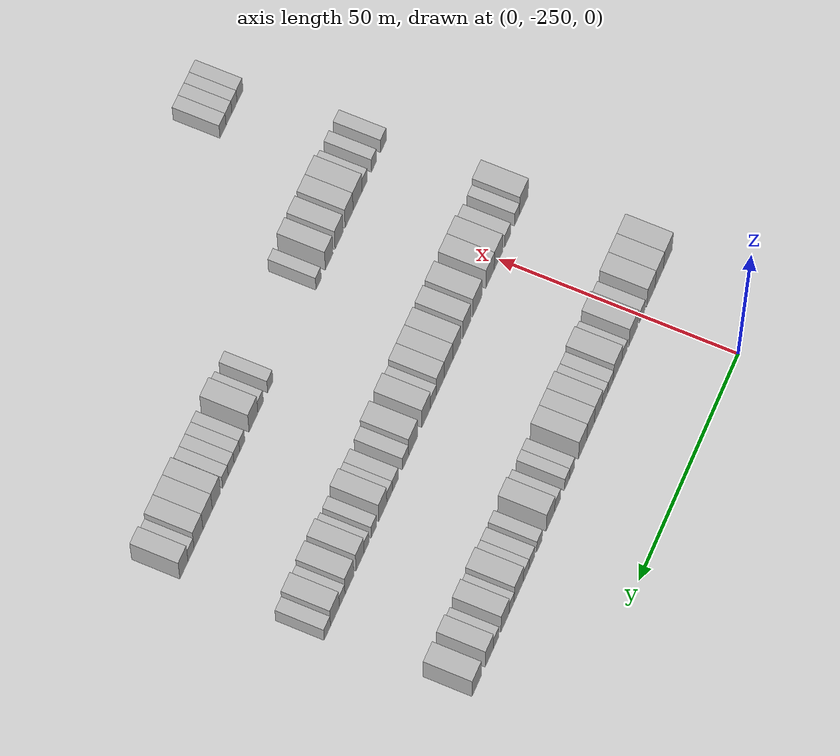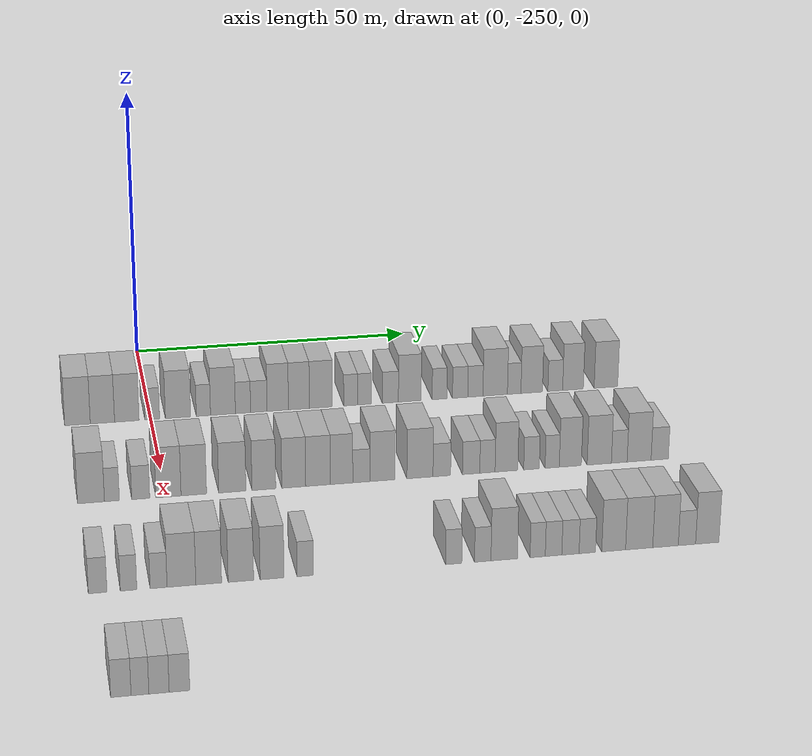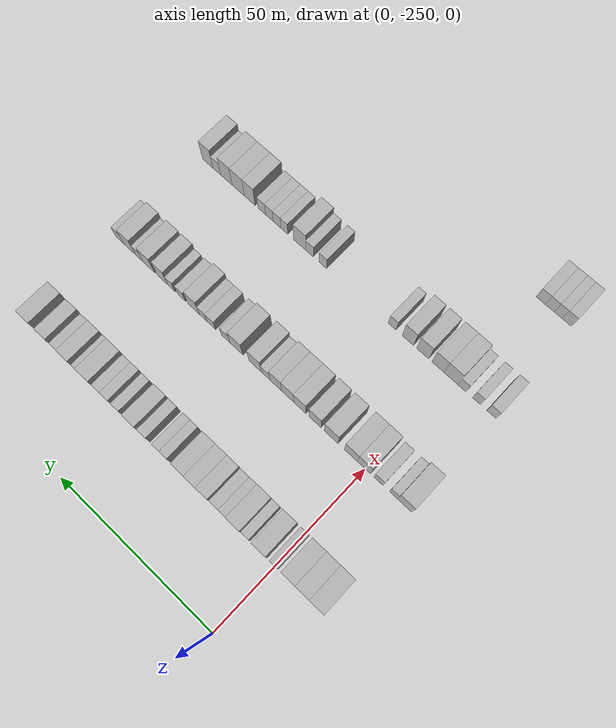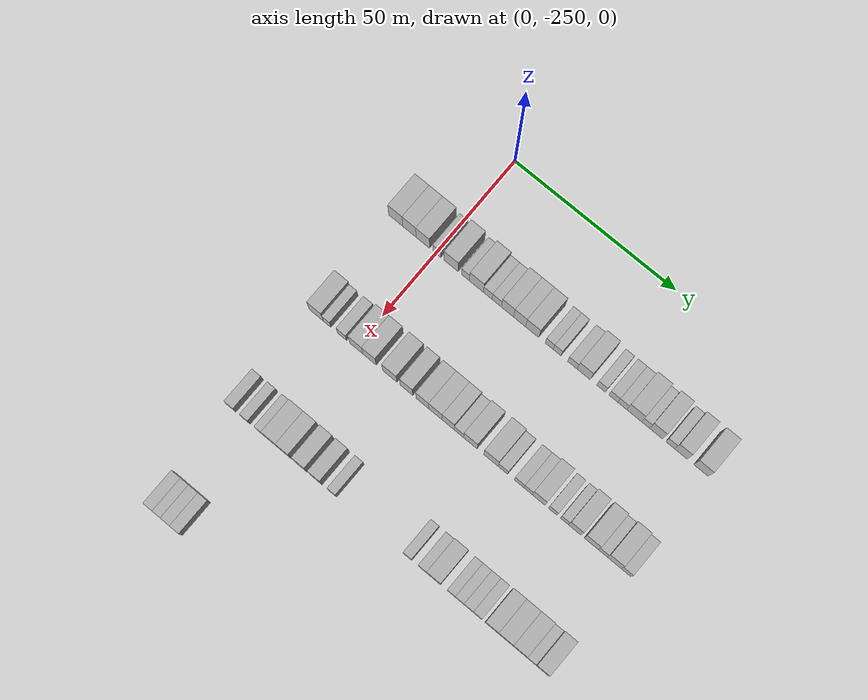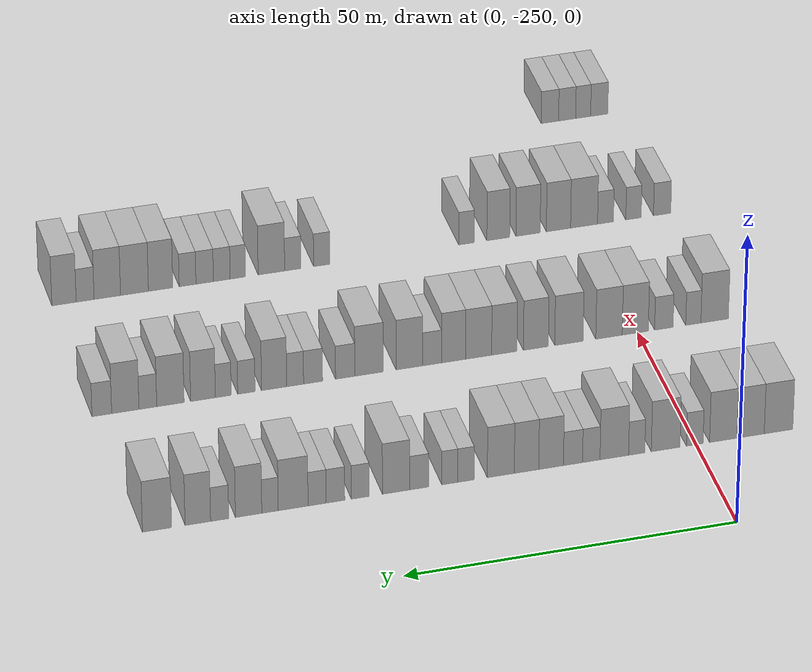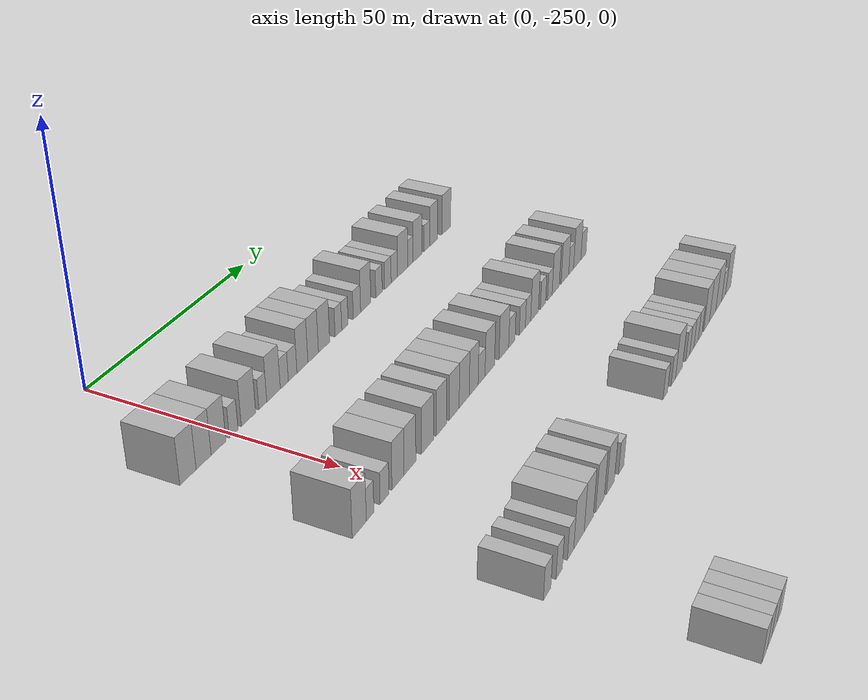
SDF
<sdf version="1.6">
 <world name="default">
  <model name="building_50">
   <static>1</static>
   <pose>25.0000 -262.7052 0 0.000000 0.000000 0.000000</pose>
   <link name="link">
    <pose>0 0 4.50 0 0 0</pose>
    <collision name="collision"><geometry><box><size>10.0000 4.4191 9.0000</size></box></geometry></collision>
    <visual name="visual">
     <cast_shadows>0</cast_shadows>
     <geometry><box><size>10.0000 4.4191 9.0000</size></box></geometry>
     <material>
      <script>
       <uri>model://HANNAS_wall/materials/scripts</uri>
       <uri>model://HANNAS_wall/materials/textures</uri>
       <name>vrc/HANNAS_wall</name>
      </script>
     </material>
    </visual>
   </link>
  </model>
  <model name="building_51">
   <static>1</static>
   <pose>25.0000 -258.3939 0 0.000000 0.000000 0.000000</pose>
   <link name="link">
    <pose>0 0 4.50 0 0 0</pose>
    <collision name="collision"><geometry><box><size>10.0000 4.2034 9.0000</size></box></geometry></collision>
    <visual name="visual">
     <cast_shadows>0</cast_shadows>
     <geometry><box><size>10.0000 4.2034 9.0000</size></box></geometry>
     <material>
      <script>
       <uri>model://HANNAS_wall/materials/scripts</uri>
       <uri>model://HANNAS_wall/materials/textures</uri>
       <name>vrc/HANNAS_wall</name>
      </script>
     </material>
    </visual>
   </link>
  </model>
  <model name="building_52">
   <static>1</static>
   <pose>25.0000 -254.1641 0 0.000000 0.000000 0.000000</pose>
   <link name="link">
    <pose>0 0 4.50 0 0 0</pose>
    <collision name="collision"><geometry><box><size>10.0000 4.2562 9.0000</size></box></geometry></collision>
    <visual name="visual">
     <cast_shadows>0</cast_shadows>
     <geometry><box><size>10.0000 4.2562 9.0000</size></box></geometry>
     <material>
      <script>
       <uri>model://HANNAS_wall/materials/scripts</uri>
       <uri>model://HANNAS_wall/materials/textures</uri>
       <name>vrc/HANNAS_wall</name>
      </script>
     </material>
    </visual>
   </link>
  </model>
  <model name="building_53">
   <static>1</static>
   <pose>25.0000 -249.7516 0 0.000000 0.000000 0.000000</pose>
   <link name="link">
    <pose>0 0 3.00 0 0 0</pose>
    <collision name="collision"><geometry><box><size>10.0000 2.5688 6.0000</size></box></geometry></collision>
    <visual name="visual">
     <cast_shadows>0</cast_shadows>
     <geometry><box><size>10.0000 2.5688 6.0000</size></box></geometry>
     <material>
      <script>
       <uri>model://HANNAS_wall/materials/scripts</uri>
       <uri>model://HANNAS_wall/materials/textures</uri>
       <name>vrc/HANNAS_wall</name>
      </script>
     </material>
    </visual>
   </link>
  </model>
  <model name="building_54">
   <static>1</static>
   <pose>25.0000 -245.2644 0 0.000000 0.000000 0.000000</pose>
   <link name="link">
    <pose>0 0 4.50 0 0 0</pose>
    <collision name="collision"><geometry><box><size>10.0000 4.4055 9.0000</size></box></geometry></collision>
    <visual name="visual">
     <cast_shadows>0</cast_shadows>
     <geometry><box><size>10.0000 4.4055 9.0000</size></box></geometry>
     <material>
      <script>
       <uri>model://HANNAS_wall/materials/scripts</uri>
       <uri>model://HANNAS_wall/materials/textures</uri>
       <name>vrc/HANNAS_wall</name>
      </script>
     </material>
    </visual>
   </link>
  </model>
  <model name="building_55">
   <static>1</static>
   <pose>25.0000 -240.8165 0 0.000000 0.000000 0.000000</pose>
   <link name="link">
    <pose>0 0 3.00 0 0 0</pose>
    <collision name="collision"><geometry><box><size>10.0000 2.4903 6.0000</size></box></geometry></collision>
    <visual name="visual">
     <cast_shadows>0</cast_shadows>
     <geometry><box><size>10.0000 2.4903 6.0000</size></box></geometry>
     <material>
      <script>
       <uri>model://HANNAS_wall/materials/scripts</uri>
       <uri>model://HANNAS_wall/materials/textures</uri>
       <name>vrc/HANNAS_wall</name>
      </script>
     </material>
    </visual>
   </link>
  </model>
  <model name="building_56">
   <static>1</static>
   <pose>25.0000 -237.3843 0 0.000000 0.000000 0.000000</pose>
   <link name="link">
    <pose>0 0 4.50 0 0 0</pose>
    <collision name="collision"><geometry><box><size>10.0000 4.3741 9.0000</size></box></geometry></collision>
    <visual name="visual">
     <cast_shadows>0</cast_shadows>
     <geometry><box><size>10.0000 4.3741 9.0000</size></box></geometry>
     <material>
      <script>
       <uri>model://HANNAS_wall/materials/scripts</uri>
       <uri>model://HANNAS_wall/materials/textures</uri>
       <name>vrc/HANNAS_wall</name>
      </script>
     </material>
    </visual>
   </link>
  </model>
  <model name="building_57">
   <static>1</static>
   <pose>25.0000 -233.8585 0 0.000000 0.000000 0.000000</pose>
   <link name="link">
    <pose>0 0 3.00 0 0 0</pose>
    <collision name="collision"><geometry><box><size>10.0000 2.6776 6.0000</size></box></geometry></collision>
    <visual name="visual">
     <cast_shadows>0</cast_shadows>
     <geometry><box><size>10.0000 2.6776 6.0000</size></box></geometry>
     <material>
      <script>
       <uri>model://HANNAS_wall/materials/scripts</uri>
       <uri>model://HANNAS_wall/materials/textures</uri>
       <name>vrc/HANNAS_wall</name>
      </script>
     </material>
    </visual>
   </link>
  </model>
  <model name="building_58">
   <static>1</static>
   <pose>25.0000 -231.0629 0 0.000000 0.000000 0.000000</pose>
   <link name="link">
    <pose>0 0 3.00 0 0 0</pose>
    <collision name="collision"><geometry><box><size>10.0000 2.9135 6.0000</size></box></geometry></collision>
    <visual name="visual">
     <cast_shadows>0</cast_shadows>
     <geometry><box><size>10.0000 2.9135 6.0000</size></box></geometry>
     <material>
      <script>
       <uri>model://HANNAS_wall/materials/scripts</uri>
       <uri>model://HANNAS_wall/materials/textures</uri>
       <name>vrc/HANNAS_wall</name>
      </script>
     </material>
    </visual>
   </link>
  </model>
  <model name="building_59">
   <static>1</static>
   <pose>25.0000 -227.7193 0 0.000000 0.000000 0.000000</pose>
   <link name="link">
    <pose>0 0 4.50 0 0 0</pose>
    <collision name="collision"><geometry><box><size>10.0000 3.7738 9.0000</size></box></geometry></collision>
    <visual name="visual">
     <cast_shadows>0</cast_shadows>
     <geometry><box><size>10.0000 3.7738 9.0000</size></box></geometry>
     <material>
      <script>
       <uri>model://HANNAS_wall/materials/scripts</uri>
       <uri>model://HANNAS_wall/materials/textures</uri>
       <name>vrc/HANNAS_wall</name>
      </script>
     </material>
    </visual>
   </link>
  </model>
  <model name="building_60">
   <static>1</static>
   <pose>25.0000 -223.9736 0 0.000000 0.000000 0.000000</pose>
   <link name="link">
    <pose>0 0 4.50 0 0 0</pose>
    <collision name="collision"><geometry><box><size>10.0000 3.7176 9.0000</size></box></geometry></collision>
    <visual name="visual">
     <cast_shadows>0</cast_shadows>
     <geometry><box><size>10.0000 3.7176 9.0000</size></box></geometry>
     <material>
      <script>
       <uri>model://HANNAS_wall/materials/scripts</uri>
       <uri>model://HANNAS_wall/materials/textures</uri>
       <name>vrc/HANNAS_wall</name>
      </script>
     </material>
    </visual>
   </link>
  </model>
  <model name="building_61">
   <static>1</static>
   <pose>25.0000 -220.0643 0 0.000000 0.000000 0.000000</pose>
   <link name="link">
    <pose>0 0 4.50 0 0 0</pose>
    <collision name="collision"><geometry><box><size>10.0000 4.1010 9.0000</size></box></geometry></collision>
    <visual name="visual">
     <cast_shadows>0</cast_shadows>
     <geometry><box><size>10.0000 4.1010 9.0000</size></box></geometry>
     <material>
      <script>
       <uri>model://HANNAS_wall/materials/scripts</uri>
       <uri>model://HANNAS_wall/materials/textures</uri>
       <name>vrc/HANNAS_wall</name>
      </script>
     </material>
    </visual>
   </link>
  </model>
  <model name="building_62">
   <static>1</static>
   <pose>25.0000 -214.7685 0 0.000000 0.000000 0.000000</pose>
   <link name="link">
    <pose>0 0 3.00 0 0 0</pose>
    <collision name="collision"><geometry><box><size>10.0000 2.4906 6.0000</size></box></geometry></collision>
    <visual name="visual">
     <cast_shadows>0</cast_shadows>
     <geometry><box><size>10.0000 2.4906 6.0000</size></box></geometry>
     <material>
      <script>
       <uri>model://HANNAS_wall/materials/scripts</uri>
       <uri>model://HANNAS_wall/materials/textures</uri>
       <name>vrc/HANNAS_wall</name>
      </script>
     </material>
    </visual>
   </link>
  </model>
  <model name="building_63">
   <static>1</static>
   <pose>25.0000 -212.3132 0 0.000000 0.000000 0.000000</pose>
   <link name="link">
    <pose>0 0 3.00 0 0 0</pose>
    <collision name="collision"><geometry><box><size>10.0000 2.4199 6.0000</size></box></geometry></collision>
    <visual name="visual">
     <cast_shadows>0</cast_shadows>
     <geometry><box><size>10.0000 2.4199 6.0000</size></box></geometry>
     <material>
      <script>
       <uri>model://HANNAS_wall/materials/scripts</uri>
       <uri>model://HANNAS_wall/materials/textures</uri>
       <name>vrc/HANNAS_wall</name>
      </script>
     </material>
    </visual>
   </link>
  </model>
  <model name="building_64">
   <static>1</static>
   <pose>25.0000 -207.6603 0 0.000000 0.000000 0.000000</pose>
   <link name="link">
    <pose>0 0 3.00 0 0 0</pose>
    <collision name="collision"><geometry><box><size>10.0000 2.8860 6.0000</size></box></geometry></collision>
    <visual name="visual">
     <cast_shadows>0</cast_shadows>
     <geometry><box><size>10.0000 2.8860 6.0000</size></box></geometry>
     <material>
      <script>
       <uri>model://HANNAS_wall/materials/scripts</uri>
       <uri>model://HANNAS_wall/materials/textures</uri>
       <name>vrc/HANNAS_wall</name>
      </script>
     </material>
    </visual>
   </link>
  </model>
  <model name="building_65">
   <static>1</static>
   <pose>25.0000 -204.1755 0 0.000000 0.000000 0.000000</pose>
   <link name="link">
    <pose>0 0 4.50 0 0 0</pose>
    <collision name="collision"><geometry><box><size>10.0000 4.0837 9.0000</size></box></geometry></collision>
    <visual name="visual">
     <cast_shadows>0</cast_shadows>
     <geometry><box><size>10.0000 4.0837 9.0000</size></box></geometry>
     <material>
      <script>
       <uri>model://HANNAS_wall/materials/scripts</uri>
       <uri>model://HANNAS_wall/materials/textures</uri>
       <name>vrc/HANNAS_wall</name>
      </script>
     </material>
    </visual>
   </link>
  </model>
  <model name="building_66">
   <static>1</static>
   <pose>25.0000 -198.7998 0 0.000000 0.000000 0.000000</pose>
   <link name="link">
    <pose>0 0 3.00 0 0 0</pose>
    <collision name="collision"><geometry><box><size>10.0000 2.6678 6.0000</size></box></geometry></collision>
    <visual name="visual">
     <cast_shadows>0</cast_shadows>
     <geometry><box><size>10.0000 2.6678 6.0000</size></box></geometry>
     <material>
      <script>
       <uri>model://HANNAS_wall/materials/scripts</uri>
       <uri>model://HANNAS_wall/materials/textures</uri>
       <name>vrc/HANNAS_wall</name>
      </script>
     </material>
    </visual>
   </link>
  </model>
  <model name="building_67">
   <static>1</static>
   <pose>25.0000 -195.0764 0 0.000000 0.000000 0.000000</pose>
   <link name="link">
    <pose>0 0 3.00 0 0 0</pose>
    <collision name="collision"><geometry><box><size>10.0000 2.7790 6.0000</size></box></geometry></collision>
    <visual name="visual">
     <cast_shadows>0</cast_shadows>
     <geometry><box><size>10.0000 2.7790 6.0000</size></box></geometry>
     <material>
      <script>
       <uri>model://HANNAS_wall/materials/scripts</uri>
       <uri>model://HANNAS_wall/materials/textures</uri>
       <name>vrc/HANNAS_wall</name>
      </script>
     </material>
    </visual>
   </link>
  </model>
  <model name="building_68">
   <static>1</static>
   <pose>25.0000 -192.3194 0 0.000000 0.000000 0.000000</pose>
   <link name="link">
    <pose>0 0 3.00 0 0 0</pose>
    <collision name="collision"><geometry><box><size>10.0000 2.7349 6.0000</size></box></geometry></collision>
    <visual name="visual">
     <cast_shadows>0</cast_shadows>
     <geometry><box><size>10.0000 2.7349 6.0000</size></box></geometry>
     <material>
      <script>
       <uri>model://HANNAS_wall/materials/scripts</uri>
       <uri>model://HANNAS_wall/materials/textures</uri>
       <name>vrc/HANNAS_wall</name>
      </script>
     </material>
    </visual>
   </link>
  </model>
  <model name="building_69">
   <static>1</static>
   <pose>25.0000 -188.7211 0 0.000000 0.000000 0.000000</pose>
   <link name="link">
    <pose>0 0 4.50 0 0 0</pose>
    <collision name="collision"><geometry><box><size>10.0000 4.4618 9.0000</size></box></geometry></collision>
    <visual name="visual">
     <cast_shadows>0</cast_shadows>
     <geometry><box><size>10.0000 4.4618 9.0000</size></box></geometry>
     <material>
      <script>
       <uri>model://HANNAS_wall/materials/scripts</uri>
       <uri>model://HANNAS_wall/materials/textures</uri>
       <name>vrc/HANNAS_wall</name>
      </script>
     </material>
    </visual>
   </link>
  </model>
  <model name="building_70">
   <static>1</static>
   <pose>25.0000 -185.2585 0 0.000000 0.000000 0.000000</pose>
   <link name="link">
    <pose>0 0 3.00 0 0 0</pose>
    <collision name="collision"><geometry><box><size>10.0000 2.4633 6.0000</size></box></geometry></collision>
    <visual name="visual">
     <cast_shadows>0</cast_shadows>
     <geometry><box><size>10.0000 2.4633 6.0000</size></box></geometry>
     <material>
      <script>
       <uri>model://HANNAS_wall/materials/scripts</uri>
       <uri>model://HANNAS_wall/materials/textures</uri>
       <name>vrc/HANNAS_wall</name>
      </script>
     </material>
    </visual>
   </link>
  </model>
  <model name="building_71">
   <static>1</static>
   <pose>25.0000 -182.0594 0 0.000000 0.000000 0.000000</pose>
   <link name="link">
    <pose>0 0 4.50 0 0 0</pose>
    <collision name="collision"><geometry><box><size>10.0000 3.9350 9.0000</size></box></geometry></collision>
    <visual name="visual">
     <cast_shadows>0</cast_shadows>
     <geometry><box><size>10.0000 3.9350 9.0000</size></box></geometry>
     <material>
      <script>
       <uri>model://HANNAS_wall/materials/scripts</uri>
       <uri>model://HANNAS_wall/materials/textures</uri>
       <name>vrc/HANNAS_wall</name>
      </script>
     </material>
    </visual>
   </link>
  </model>
  <model name="building_72">
   <static>1</static>
   <pose>25.0000 -177.7411 0 0.000000 0.000000 0.000000</pose>
   <link name="link">
    <pose>0 0 3.00 0 0 0</pose>
    <collision name="collision"><geometry><box><size>10.0000 2.7015 6.0000</size></box></geometry></collision>
    <visual name="visual">
     <cast_shadows>0</cast_shadows>
     <geometry><box><size>10.0000 2.7015 6.0000</size></box></geometry>
     <material>
      <script>
       <uri>model://HANNAS_wall/materials/scripts</uri>
       <uri>model://HANNAS_wall/materials/textures</uri>
       <name>vrc/HANNAS_wall</name>
      </script>
     </material>
    </visual>
   </link>
  </model>
  <model name="building_73">
   <static>1</static>
   <pose>25.0000 -174.4926 0 0.000000 0.000000 0.000000</pose>
   <link name="link">
    <pose>0 0 4.50 0 0 0</pose>
    <collision name="collision"><geometry><box><size>10.0000 3.7957 9.0000</size></box></geometry></collision>
    <visual name="visual">
     <cast_shadows>0</cast_shadows>
     <geometry><box><size>10.0000 3.7957 9.0000</size></box></geometry>
     <material>
      <script>
       <uri>model://HANNAS_wall/materials/scripts</uri>
       <uri>model://HANNAS_wall/materials/textures</uri>
       <name>vrc/HANNAS_wall</name>
      </script>
     </material>
    </visual>
   </link>
  </model>
  <model name="building_74">
   <static>1</static>
   <pose>25.0000 -168.4273 0 0.000000 0.000000 0.000000</pose>
   <link name="link">
    <pose>0 0 4.50 0 0 0</pose>
    <collision name="collision"><geometry><box><size>10.0000 4.3349 9.0000</size></box></geometry></collision>
    <visual name="visual">
     <cast_shadows>0</cast_shadows>
     <geometry><box><size>10.0000 4.3349 9.0000</size></box></geometry>
     <material>
      <script>
       <uri>model://HANNAS_wall/materials/scripts</uri>
       <uri>model://HANNAS_wall/materials/textures</uri>
       <name>vrc/HANNAS_wall</name>
      </script>
     </material>
    </visual>
   </link>
  </model>
  <model name="building_286">
   <static>1</static>
   <pose>55.0000 -262.1934 0 0.000000 0.000000 0.000000</pose>
   <link name="link">
    <pose>0 0 4.50 0 0 0</pose>
    <collision name="collision"><geometry><box><size>10.0000 4.3543 9.0000</size></box></geometry></collision>
    <visual name="visual">
     <cast_shadows>0</cast_shadows>
     <geometry><box><size>10.0000 4.3543 9.0000</size></box></geometry>
     <material>
      <script>
       <uri>model://HANNAS_wall/materials/scripts</uri>
       <uri>model://HANNAS_wall/materials/textures</uri>
       <name>vrc/HANNAS_wall</name>
      </script>
     </material>
    </visual>
   </link>
  </model>
  <model name="building_287">
   <static>1</static>
   <pose>55.0000 -258.8116 0 0.000000 0.000000 0.000000</pose>
   <link name="link">
    <pose>0 0 3.00 0 0 0</pose>
    <collision name="collision"><geometry><box><size>10.0000 2.4094 6.0000</size></box></geometry></collision>
    <visual name="visual">
     <cast_shadows>0</cast_shadows>
     <geometry><box><size>10.0000 2.4094 6.0000</size></box></geometry>
     <material>
      <script>
       <uri>model://HANNAS_wall/materials/scripts</uri>
       <uri>model://HANNAS_wall/materials/textures</uri>
       <name>vrc/HANNAS_wall</name>
      </script>
     </material>
    </visual>
   </link>
  </model>
  <model name="building_288">
   <static>1</static>
   <pose>55.0000 -254.1449 0 0.000000 0.000000 0.000000</pose>
   <link name="link">
    <pose>0 0 3.00 0 0 0</pose>
    <collision name="collision"><geometry><box><size>10.0000 2.9239 6.0000</size></box></geometry></collision>
    <visual name="visual">
     <cast_shadows>0</cast_shadows>
     <geometry><box><size>10.0000 2.9239 6.0000</size></box></geometry>
     <material>
      <script>
       <uri>model://HANNAS_wall/materials/scripts</uri>
       <uri>model://HANNAS_wall/materials/textures</uri>
       <name>vrc/HANNAS_wall</name>
      </script>
     </material>
    </visual>
   </link>
  </model>
  <model name="building_289">
   <static>1</static>
   <pose>55.0000 -249.6311 0 0.000000 0.000000 0.000000</pose>
   <link name="link">
    <pose>0 0 4.50 0 0 0</pose>
    <collision name="collision"><geometry><box><size>10.0000 4.1038 9.0000</size></box></geometry></collision>
    <visual name="visual">
     <cast_shadows>0</cast_shadows>
     <geometry><box><size>10.0000 4.1038 9.0000</size></box></geometry>
     <material>
      <script>
       <uri>model://HANNAS_wall/materials/scripts</uri>
       <uri>model://HANNAS_wall/materials/textures</uri>
       <name>vrc/HANNAS_wall</name>
      </script>
     </material>
    </visual>
   </link>
  </model>
  <model name="building_290">
   <static>1</static>
   <pose>55.0000 -245.4934 0 0.000000 0.000000 0.000000</pose>
   <link name="link">
    <pose>0 0 4.50 0 0 0</pose>
    <collision name="collision"><geometry><box><size>10.0000 4.1716 9.0000</size></box></geometry></collision>
    <visual name="visual">
     <cast_shadows>0</cast_shadows>
     <geometry><box><size>10.0000 4.1716 9.0000</size></box></geometry>
     <material>
      <script>
       <uri>model://HANNAS_wall/materials/scripts</uri>
       <uri>model://HANNAS_wall/materials/textures</uri>
       <name>vrc/HANNAS_wall</name>
      </script>
     </material>
    </visual>
   </link>
  </model>
  <model name="building_291">
   <static>1</static>
   <pose>55.0000 -239.1766 0 0.000000 0.000000 0.000000</pose>
   <link name="link">
    <pose>0 0 4.50 0 0 0</pose>
    <collision name="collision"><geometry><box><size>10.0000 4.4619 9.0000</size></box></geometry></collision>
    <visual name="visual">
     <cast_shadows>0</cast_shadows>
     <geometry><box><size>10.0000 4.4619 9.0000</size></box></geometry>
     <material>
      <script>
       <uri>model://HANNAS_wall/materials/scripts</uri>
       <uri>model://HANNAS_wall/materials/textures</uri>
       <name>vrc/HANNAS_wall</name>
      </script>
     </material>
    </visual>
   </link>
  </model>
  <model name="building_292">
   <static>1</static>
   <pose>55.0000 -233.9886 0 0.000000 0.000000 0.000000</pose>
   <link name="link">
    <pose>0 0 4.50 0 0 0</pose>
    <collision name="collision"><geometry><box><size>10.0000 3.9142 9.0000</size></box></geometry></collision>
    <visual name="visual">
     <cast_shadows>0</cast_shadows>
     <geometry><box><size>10.0000 3.9142 9.0000</size></box></geometry>
     <material>
      <script>
       <uri>model://HANNAS_wall/materials/scripts</uri>
       <uri>model://HANNAS_wall/materials/textures</uri>
       <name>vrc/HANNAS_wall</name>
      </script>
     </material>
    </visual>
   </link>
  </model>
  <model name="building_293">
   <static>1</static>
   <pose>55.0000 -229.0522 0 0.000000 0.000000 0.000000</pose>
   <link name="link">
    <pose>0 0 4.50 0 0 0</pose>
    <collision name="collision"><geometry><box><size>10.0000 3.9586 9.0000</size></box></geometry></collision>
    <visual name="visual">
     <cast_shadows>0</cast_shadows>
     <geometry><box><size>10.0000 3.9586 9.0000</size></box></geometry>
     <material>
      <script>
       <uri>model://HANNAS_wall/materials/scripts</uri>
       <uri>model://HANNAS_wall/materials/textures</uri>
       <name>vrc/HANNAS_wall</name>
      </script>
     </material>
    </visual>
   </link>
  </model>
  <model name="building_294">
   <static>1</static>
   <pose>55.0000 -225.0298 0 0.000000 0.000000 0.000000</pose>
   <link name="link">
    <pose>0 0 4.50 0 0 0</pose>
    <collision name="collision"><geometry><box><size>10.0000 4.0862 9.0000</size></box></geometry></collision>
    <visual name="visual">
     <cast_shadows>0</cast_shadows>
     <geometry><box><size>10.0000 4.0862 9.0000</size></box></geometry>
     <material>
      <script>
       <uri>model://HANNAS_wall/materials/scripts</uri>
       <uri>model://HANNAS_wall/materials/textures</uri>
       <name>vrc/HANNAS_wall</name>
      </script>
     </material>
    </visual>
   </link>
  </model>
  <model name="building_295">
   <static>1</static>
   <pose>55.0000 -221.1136 0 0.000000 0.000000 0.000000</pose>
   <link name="link">
    <pose>0 0 4.50 0 0 0</pose>
    <collision name="collision"><geometry><box><size>10.0000 3.7461 9.0000</size></box></geometry></collision>
    <visual name="visual">
     <cast_shadows>0</cast_shadows>
     <geometry><box><size>10.0000 3.7461 9.0000</size></box></geometry>
     <material>
      <script>
       <uri>model://HANNAS_wall/materials/scripts</uri>
       <uri>model://HANNAS_wall/materials/textures</uri>
       <name>vrc/HANNAS_wall</name>
      </script>
     </material>
    </visual>
   </link>
  </model>
  <model name="building_296">
   <static>1</static>
   <pose>55.0000 -217.7888 0 0.000000 0.000000 0.000000</pose>
   <link name="link">
    <pose>0 0 3.00 0 0 0</pose>
    <collision name="collision"><geometry><box><size>10.0000 2.9035 6.0000</size></box></geometry></collision>
    <visual name="visual">
     <cast_shadows>0</cast_shadows>
     <geometry><box><size>10.0000 2.9035 6.0000</size></box></geometry>
     <material>
      <script>
       <uri>model://HANNAS_wall/materials/scripts</uri>
       <uri>model://HANNAS_wall/materials/textures</uri>
       <name>vrc/HANNAS_wall</name>
      </script>
     </material>
    </visual>
   </link>
  </model>
  <model name="building_297">
   <static>1</static>
   <pose>55.0000 -214.2587 0 0.000000 0.000000 0.000000</pose>
   <link name="link">
    <pose>0 0 4.50 0 0 0</pose>
    <collision name="collision"><geometry><box><size>10.0000 4.1567 9.0000</size></box></geometry></collision>
    <visual name="visual">
     <cast_shadows>0</cast_shadows>
     <geometry><box><size>10.0000 4.1567 9.0000</size></box></geometry>
     <material>
      <script>
       <uri>model://HANNAS_wall/materials/scripts</uri>
       <uri>model://HANNAS_wall/materials/textures</uri>
       <name>vrc/HANNAS_wall</name>
      </script>
     </material>
    </visual>
   </link>
  </model>
  <model name="building_298">
   <static>1</static>
   <pose>55.0000 -207.9861 0 0.000000 0.000000 0.000000</pose>
   <link name="link">
    <pose>0 0 4.50 0 0 0</pose>
    <collision name="collision"><geometry><box><size>10.0000 4.3885 9.0000</size></box></geometry></collision>
    <visual name="visual">
     <cast_shadows>0</cast_shadows>
     <geometry><box><size>10.0000 4.3885 9.0000</size></box></geometry>
     <material>
      <script>
       <uri>model://HANNAS_wall/materials/scripts</uri>
       <uri>model://HANNAS_wall/materials/textures</uri>
       <name>vrc/HANNAS_wall</name>
      </script>
     </material>
    </visual>
   </link>
  </model>
  <model name="building_299">
   <static>1</static>
   <pose>55.0000 -204.3033 0 0.000000 0.000000 0.000000</pose>
   <link name="link">
    <pose>0 0 3.00 0 0 0</pose>
    <collision name="collision"><geometry><box><size>10.0000 2.9770 6.0000</size></box></geometry></collision>
    <visual name="visual">
     <cast_shadows>0</cast_shadows>
     <geometry><box><size>10.0000 2.9770 6.0000</size></box></geometry>
     <material>
      <script>
       <uri>model://HANNAS_wall/materials/scripts</uri>
       <uri>model://HANNAS_wall/materials/textures</uri>
       <name>vrc/HANNAS_wall</name>
      </script>
     </material>
    </visual>
   </link>
  </model>
  <model name="building_300">
   <static>1</static>
   <pose>55.0000 -199.3479 0 0.000000 0.000000 0.000000</pose>
   <link name="link">
    <pose>0 0 3.00 0 0 0</pose>
    <collision name="collision"><geometry><box><size>10.0000 2.9338 6.0000</size></box></geometry></collision>
    <visual name="visual">
     <cast_shadows>0</cast_shadows>
     <geometry><box><size>10.0000 2.9338 6.0000</size></box></geometry>
     <material>
      <script>
       <uri>model://HANNAS_wall/materials/scripts</uri>
       <uri>model://HANNAS_wall/materials/textures</uri>
       <name>vrc/HANNAS_wall</name>
      </script>
     </material>
    </visual>
   </link>
  </model>
  <model name="building_301">
   <static>1</static>
   <pose>55.0000 -196.5827 0 0.000000 0.000000 0.000000</pose>
   <link name="link">
    <pose>0 0 3.00 0 0 0</pose>
    <collision name="collision"><geometry><box><size>10.0000 2.5968 6.0000</size></box></geometry></collision>
    <visual name="visual">
     <cast_shadows>0</cast_shadows>
     <geometry><box><size>10.0000 2.5968 6.0000</size></box></geometry>
     <material>
      <script>
       <uri>model://HANNAS_wall/materials/scripts</uri>
       <uri>model://HANNAS_wall/materials/textures</uri>
       <name>vrc/HANNAS_wall</name>
      </script>
     </material>
    </visual>
   </link>
  </model>
  <model name="building_302">
   <static>1</static>
   <pose>55.0000 -193.3473 0 0.000000 0.000000 0.000000</pose>
   <link name="link">
    <pose>0 0 4.50 0 0 0</pose>
    <collision name="collision"><geometry><box><size>10.0000 3.8738 9.0000</size></box></geometry></collision>
    <visual name="visual">
     <cast_shadows>0</cast_shadows>
     <geometry><box><size>10.0000 3.8738 9.0000</size></box></geometry>
     <material>
      <script>
       <uri>model://HANNAS_wall/materials/scripts</uri>
       <uri>model://HANNAS_wall/materials/textures</uri>
       <name>vrc/HANNAS_wall</name>
      </script>
     </material>
    </visual>
   </link>
  </model>
  <model name="building_303">
   <static>1</static>
   <pose>55.0000 -189.0824 0 0.000000 0.000000 0.000000</pose>
   <link name="link">
    <pose>0 0 3.00 0 0 0</pose>
    <collision name="collision"><geometry><box><size>10.0000 2.6560 6.0000</size></box></geometry></collision>
    <visual name="visual">
     <cast_shadows>0</cast_shadows>
     <geometry><box><size>10.0000 2.6560 6.0000</size></box></geometry>
     <material>
      <script>
       <uri>model://HANNAS_wall/materials/scripts</uri>
       <uri>model://HANNAS_wall/materials/textures</uri>
       <name>vrc/HANNAS_wall</name>
      </script>
     </material>
    </visual>
   </link>
  </model>
  <model name="building_304">
   <static>1</static>
   <pose>55.0000 -185.5411 0 0.000000 0.000000 0.000000</pose>
   <link name="link">
    <pose>0 0 3.00 0 0 0</pose>
    <collision name="collision"><geometry><box><size>10.0000 2.4267 6.0000</size></box></geometry></collision>
    <visual name="visual">
     <cast_shadows>0</cast_shadows>
     <geometry><box><size>10.0000 2.4267 6.0000</size></box></geometry>
     <material>
      <script>
       <uri>model://HANNAS_wall/materials/scripts</uri>
       <uri>model://HANNAS_wall/materials/textures</uri>
       <name>vrc/HANNAS_wall</name>
      </script>
     </material>
    </visual>
   </link>
  </model>
  <model name="building_305">
   <static>1</static>
   <pose>55.0000 -182.4352 0 0.000000 0.000000 0.000000</pose>
   <link name="link">
    <pose>0 0 4.50 0 0 0</pose>
    <collision name="collision"><geometry><box><size>10.0000 3.7850 9.0000</size></box></geometry></collision>
    <visual name="visual">
     <cast_shadows>0</cast_shadows>
     <geometry><box><size>10.0000 3.7850 9.0000</size></box></geometry>
     <material>
      <script>
       <uri>model://HANNAS_wall/materials/scripts</uri>
       <uri>model://HANNAS_wall/materials/textures</uri>
       <name>vrc/HANNAS_wall</name>
      </script>
     </material>
    </visual>
   </link>
  </model>
  <model name="building_306">
   <static>1</static>
   <pose>55.0000 -177.4528 0 0.000000 0.000000 0.000000</pose>
   <link name="link">
    <pose>0 0 4.50 0 0 0</pose>
    <collision name="collision"><geometry><box><size>10.0000 4.1797 9.0000</size></box></geometry></collision>
    <visual name="visual">
     <cast_shadows>0</cast_shadows>
     <geometry><box><size>10.0000 4.1797 9.0000</size></box></geometry>
     <material>
      <script>
       <uri>model://HANNAS_wall/materials/scripts</uri>
       <uri>model://HANNAS_wall/materials/textures</uri>
       <name>vrc/HANNAS_wall</name>
      </script>
     </material>
    </visual>
   </link>
  </model>
  <model name="building_307">
   <static>1</static>
   <pose>55.0000 -174.0076 0 0.000000 0.000000 0.000000</pose>
   <link name="link">
    <pose>0 0 3.00 0 0 0</pose>
    <collision name="collision"><geometry><box><size>10.0000 2.7107 6.0000</size></box></geometry></collision>
    <visual name="visual">
     <cast_shadows>0</cast_shadows>
     <geometry><box><size>10.0000 2.7107 6.0000</size></box></geometry>
     <material>
      <script>
       <uri>model://HANNAS_wall/materials/scripts</uri>
       <uri>model://HANNAS_wall/materials/textures</uri>
       <name>vrc/HANNAS_wall</name>
      </script>
     </material>
    </visual>
   </link>
  </model>
  <model name="building_308">
   <static>1</static>
   <pose>55.0000 -170.5738 0 0.000000 0.000000 0.000000</pose>
   <link name="link">
    <pose>0 0 4.50 0 0 0</pose>
    <collision name="collision"><geometry><box><size>10.0000 4.1570 9.0000</size></box></geometry></collision>
    <visual name="visual">
     <cast_shadows>0</cast_shadows>
     <geometry><box><size>10.0000 4.1570 9.0000</size></box></geometry>
     <material>
      <script>
       <uri>model://HANNAS_wall/materials/scripts</uri>
       <uri>model://HANNAS_wall/materials/textures</uri>
       <name>vrc/HANNAS_wall</name>
      </script>
     </material>
    </visual>
   </link>
  </model>
  <model name="building_309">
   <static>1</static>
   <pose>55.0000 -167.0004 0 0.000000 0.000000 0.000000</pose>
   <link name="link">
    <pose>0 0 3.00 0 0 0</pose>
    <collision name="collision"><geometry><box><size>10.0000 2.9898 6.0000</size></box></geometry></collision>
    <visual name="visual">
     <cast_shadows>0</cast_shadows>
     <geometry><box><size>10.0000 2.9898 6.0000</size></box></geometry>
     <material>
      <script>
       <uri>model://HANNAS_wall/materials/scripts</uri>
       <uri>model://HANNAS_wall/materials/textures</uri>
       <name>vrc/HANNAS_wall</name>
      </script>
     </material>
    </visual>
   </link>
  </model>
  <model name="building_514">
   <static>1</static>
   <pose>85.0000 -263.0121 0 0.000000 0.000000 0.000000</pose>
   <link name="link">
    <pose>0 0 3.00 0 0 0</pose>
    <collision name="collision"><geometry><box><size>10.0000 2.7999 6.0000</size></box></geometry></collision>
    <visual name="visual">
     <cast_shadows>0</cast_shadows>
     <geometry><box><size>10.0000 2.7999 6.0000</size></box></geometry>
     <material>
      <script>
       <uri>model://HANNAS_wall/materials/scripts</uri>
       <uri>model://HANNAS_wall/materials/textures</uri>
       <name>vrc/HANNAS_wall</name>
      </script>
     </material>
    </visual>
   </link>
  </model>
  <model name="building_515">
   <static>1</static>
   <pose>85.0000 -258.3641 0 0.000000 0.000000 0.000000</pose>
   <link name="link">
    <pose>0 0 3.00 0 0 0</pose>
    <collision name="collision"><geometry><box><size>10.0000 2.4961 6.0000</size></box></geometry></collision>
    <visual name="visual">
     <cast_shadows>0</cast_shadows>
     <geometry><box><size>10.0000 2.4961 6.0000</size></box></geometry>
     <material>
      <script>
       <uri>model://HANNAS_wall/materials/scripts</uri>
       <uri>model://HANNAS_wall/materials/textures</uri>
       <name>vrc/HANNAS_wall</name>
      </script>
     </material>
    </visual>
   </link>
  </model>
  <model name="building_516">
   <static>1</static>
   <pose>85.0000 -253.8300 0 0.000000 0.000000 0.000000</pose>
   <link name="link">
    <pose>0 0 3.00 0 0 0</pose>
    <collision name="collision"><geometry><box><size>10.0000 2.5721 6.0000</size></box></geometry></collision>
    <visual name="visual">
     <cast_shadows>0</cast_shadows>
     <geometry><box><size>10.0000 2.5721 6.0000</size></box></geometry>
     <material>
      <script>
       <uri>model://HANNAS_wall/materials/scripts</uri>
       <uri>model://HANNAS_wall/materials/textures</uri>
       <name>vrc/HANNAS_wall</name>
      </script>
     </material>
    </visual>
   </link>
  </model>
  <model name="building_517">
   <static>1</static>
   <pose>85.0000 -250.3627 0 0.000000 0.000000 0.000000</pose>
   <link name="link">
    <pose>0 0 4.50 0 0 0</pose>
    <collision name="collision"><geometry><box><size>10.0000 4.3626 9.0000</size></box></geometry></collision>
    <visual name="visual">
     <cast_shadows>0</cast_shadows>
     <geometry><box><size>10.0000 4.3626 9.0000</size></box></geometry>
     <material>
      <script>
       <uri>model://HANNAS_wall/materials/scripts</uri>
       <uri>model://HANNAS_wall/materials/textures</uri>
       <name>vrc/HANNAS_wall</name>
      </script>
     </material>
    </visual>
   </link>
  </model>
  <model name="building_518">
   <static>1</static>
   <pose>85.0000 -246.2249 0 0.000000 0.000000 0.000000</pose>
   <link name="link">
    <pose>0 0 4.50 0 0 0</pose>
    <collision name="collision"><geometry><box><size>10.0000 3.9130 9.0000</size></box></geometry></collision>
    <visual name="visual">
     <cast_shadows>0</cast_shadows>
     <geometry><box><size>10.0000 3.9130 9.0000</size></box></geometry>
     <material>
      <script>
       <uri>model://HANNAS_wall/materials/scripts</uri>
       <uri>model://HANNAS_wall/materials/textures</uri>
       <name>vrc/HANNAS_wall</name>
      </script>
     </material>
    </visual>
   </link>
  </model>
  <model name="building_519">
   <static>1</static>
   <pose>85.0000 -241.3206 0 0.000000 0.000000 0.000000</pose>
   <link name="link">
    <pose>0 0 4.50 0 0 0</pose>
    <collision name="collision"><geometry><box><size>10.0000 3.8957 9.0000</size></box></geometry></collision>
    <visual name="visual">
     <cast_shadows>0</cast_shadows>
     <geometry><box><size>10.0000 3.8957 9.0000</size></box></geometry>
     <material>
      <script>
       <uri>model://HANNAS_wall/materials/scripts</uri>
       <uri>model://HANNAS_wall/materials/textures</uri>
       <name>vrc/HANNAS_wall</name>
      </script>
     </material>
    </visual>
   </link>
  </model>
  <model name="building_520">
   <static>1</static>
   <pose>85.0000 -236.5378 0 0.000000 0.000000 0.000000</pose>
   <link name="link">
    <pose>0 0 4.50 0 0 0</pose>
    <collision name="collision"><geometry><box><size>10.0000 3.6697 9.0000</size></box></geometry></collision>
    <visual name="visual">
     <cast_shadows>0</cast_shadows>
     <geometry><box><size>10.0000 3.6697 9.0000</size></box></geometry>
     <material>
      <script>
       <uri>model://HANNAS_wall/materials/scripts</uri>
       <uri>model://HANNAS_wall/materials/textures</uri>
       <name>vrc/HANNAS_wall</name>
      </script>
     </material>
    </visual>
   </link>
  </model>
  <model name="building_521">
   <static>1</static>
   <pose>85.0000 -231.4399 0 0.000000 0.000000 0.000000</pose>
   <link name="link">
    <pose>0 0 3.00 0 0 0</pose>
    <collision name="collision"><geometry><box><size>10.0000 2.5261 6.0000</size></box></geometry></collision>
    <visual name="visual">
     <cast_shadows>0</cast_shadows>
     <geometry><box><size>10.0000 2.5261 6.0000</size></box></geometry>
     <material>
      <script>
       <uri>model://HANNAS_wall/materials/scripts</uri>
       <uri>model://HANNAS_wall/materials/textures</uri>
       <name>vrc/HANNAS_wall</name>
      </script>
     </material>
    </visual>
   </link>
  </model>
  <model name="building_522">
   <static>1</static>
   <pose>85.0000 -208.3453 0 0.000000 0.000000 0.000000</pose>
   <link name="link">
    <pose>0 0 3.00 0 0 0</pose>
    <collision name="collision"><geometry><box><size>10.0000 2.5544 6.0000</size></box></geometry></collision>
    <visual name="visual">
     <cast_shadows>0</cast_shadows>
     <geometry><box><size>10.0000 2.5544 6.0000</size></box></geometry>
     <material>
      <script>
       <uri>model://HANNAS_wall/materials/scripts</uri>
       <uri>model://HANNAS_wall/materials/textures</uri>
       <name>vrc/HANNAS_wall</name>
      </script>
     </material>
    </visual>
   </link>
  </model>
  <model name="building_523">
   <static>1</static>
   <pose>85.0000 -203.7745 0 0.000000 0.000000 0.000000</pose>
   <link name="link">
    <pose>0 0 3.00 0 0 0</pose>
    <collision name="collision"><geometry><box><size>10.0000 2.5873 6.0000</size></box></geometry></collision>
    <visual name="visual">
     <cast_shadows>0</cast_shadows>
     <geometry><box><size>10.0000 2.5873 6.0000</size></box></geometry>
     <material>
      <script>
       <uri>model://HANNAS_wall/materials/scripts</uri>
       <uri>model://HANNAS_wall/materials/textures</uri>
       <name>vrc/HANNAS_wall</name>
      </script>
     </material>
    </visual>
   </link>
  </model>
  <model name="building_524">
   <static>1</static>
   <pose>85.0000 -200.3870 0 0.000000 0.000000 0.000000</pose>
   <link name="link">
    <pose>0 0 4.50 0 0 0</pose>
    <collision name="collision"><geometry><box><size>10.0000 4.1876 9.0000</size></box></geometry></collision>
    <visual name="visual">
     <cast_shadows>0</cast_shadows>
     <geometry><box><size>10.0000 4.1876 9.0000</size></box></geometry>
     <material>
      <script>
       <uri>model://HANNAS_wall/materials/scripts</uri>
       <uri>model://HANNAS_wall/materials/textures</uri>
       <name>vrc/HANNAS_wall</name>
      </script>
     </material>
    </visual>
   </link>
  </model>
  <model name="building_525">
   <static>1</static>
   <pose>85.0000 -195.0847 0 0.000000 0.000000 0.000000</pose>
   <link name="link">
    <pose>0 0 3.00 0 0 0</pose>
    <collision name="collision"><geometry><box><size>10.0000 2.4171 6.0000</size></box></geometry></collision>
    <visual name="visual">
     <cast_shadows>0</cast_shadows>
     <geometry><box><size>10.0000 2.4171 6.0000</size></box></geometry>
     <material>
      <script>
       <uri>model://HANNAS_wall/materials/scripts</uri>
       <uri>model://HANNAS_wall/materials/textures</uri>
       <name>vrc/HANNAS_wall</name>
      </script>
     </material>
    </visual>
   </link>
  </model>
  <model name="building_526">
   <static>1</static>
   <pose>85.0000 -192.5601 0 0.000000 0.000000 0.000000</pose>
   <link name="link">
    <pose>0 0 3.00 0 0 0</pose>
    <collision name="collision"><geometry><box><size>10.0000 2.6321 6.0000</size></box></geometry></collision>
    <visual name="visual">
     <cast_shadows>0</cast_shadows>
     <geometry><box><size>10.0000 2.6321 6.0000</size></box></geometry>
     <material>
      <script>
       <uri>model://HANNAS_wall/materials/scripts</uri>
       <uri>model://HANNAS_wall/materials/textures</uri>
       <name>vrc/HANNAS_wall</name>
      </script>
     </material>
    </visual>
   </link>
  </model>
  <model name="building_527">
   <static>1</static>
   <pose>85.0000 -189.8671 0 0.000000 0.000000 0.000000</pose>
   <link name="link">
    <pose>0 0 3.00 0 0 0</pose>
    <collision name="collision"><geometry><box><size>10.0000 2.7538 6.0000</size></box></geometry></collision>
    <visual name="visual">
     <cast_shadows>0</cast_shadows>
     <geometry><box><size>10.0000 2.7538 6.0000</size></box></geometry>
     <material>
      <script>
       <uri>model://HANNAS_wall/materials/scripts</uri>
       <uri>model://HANNAS_wall/materials/textures</uri>
       <name>vrc/HANNAS_wall</name>
      </script>
     </material>
    </visual>
   </link>
  </model>
  <model name="building_528">
   <static>1</static>
   <pose>85.0000 -187.1749 0 0.000000 0.000000 0.000000</pose>
   <link name="link">
    <pose>0 0 3.00 0 0 0</pose>
    <collision name="collision"><geometry><box><size>10.0000 2.6305 6.0000</size></box></geometry></collision>
    <visual name="visual">
     <cast_shadows>0</cast_shadows>
     <geometry><box><size>10.0000 2.6305 6.0000</size></box></geometry>
     <material>
      <script>
       <uri>model://HANNAS_wall/materials/scripts</uri>
       <uri>model://HANNAS_wall/materials/textures</uri>
       <name>vrc/HANNAS_wall</name>
      </script>
     </material>
    </visual>
   </link>
  </model>
  <model name="building_529">
   <static>1</static>
   <pose>85.0000 -182.9488 0 0.000000 0.000000 0.000000</pose>
   <link name="link">
    <pose>0 0 4.50 0 0 0</pose>
    <collision name="collision"><geometry><box><size>10.0000 3.8216 9.0000</size></box></geometry></collision>
    <visual name="visual">
     <cast_shadows>0</cast_shadows>
     <geometry><box><size>10.0000 3.8216 9.0000</size></box></geometry>
     <material>
      <script>
       <uri>model://HANNAS_wall/materials/scripts</uri>
       <uri>model://HANNAS_wall/materials/textures</uri>
       <name>vrc/HANNAS_wall</name>
      </script>
     </material>
    </visual>
   </link>
  </model>
  <model name="building_530">
   <static>1</static>
   <pose>85.0000 -178.8546 0 0.000000 0.000000 0.000000</pose>
   <link name="link">
    <pose>0 0 4.50 0 0 0</pose>
    <collision name="collision"><geometry><box><size>10.0000 4.3669 9.0000</size></box></geometry></collision>
    <visual name="visual">
     <cast_shadows>0</cast_shadows>
     <geometry><box><size>10.0000 4.3669 9.0000</size></box></geometry>
     <material>
      <script>
       <uri>model://HANNAS_wall/materials/scripts</uri>
       <uri>model://HANNAS_wall/materials/textures</uri>
       <name>vrc/HANNAS_wall</name>
      </script>
     </material>
    </visual>
   </link>
  </model>
  <model name="building_531">
   <static>1</static>
   <pose>85.0000 -174.6048 0 0.000000 0.000000 0.000000</pose>
   <link name="link">
    <pose>0 0 4.50 0 0 0</pose>
    <collision name="collision"><geometry><box><size>10.0000 4.1326 9.0000</size></box></geometry></collision>
    <visual name="visual">
     <cast_shadows>0</cast_shadows>
     <geometry><box><size>10.0000 4.1326 9.0000</size></box></geometry>
     <material>
      <script>
       <uri>model://HANNAS_wall/materials/scripts</uri>
       <uri>model://HANNAS_wall/materials/textures</uri>
       <name>vrc/HANNAS_wall</name>
      </script>
     </material>
    </visual>
   </link>
  </model>
  <model name="building_532">
   <static>1</static>
   <pose>85.0000 -171.1385 0 0.000000 0.000000 0.000000</pose>
   <link name="link">
    <pose>0 0 3.00 0 0 0</pose>
    <collision name="collision"><geometry><box><size>10.0000 2.7999 6.0000</size></box></geometry></collision>
    <visual name="visual">
     <cast_shadows>0</cast_shadows>
     <geometry><box><size>10.0000 2.7999 6.0000</size></box></geometry>
     <material>
      <script>
       <uri>model://HANNAS_wall/materials/scripts</uri>
       <uri>model://HANNAS_wall/materials/textures</uri>
       <name>vrc/HANNAS_wall</name>
      </script>
     </material>
    </visual>
   </link>
  </model>
  <model name="building_533">
   <static>1</static>
   <pose>85.0000 -167.8476 0 0.000000 0.000000 0.000000</pose>
   <link name="link">
    <pose>0 0 4.50 0 0 0</pose>
    <collision name="collision"><geometry><box><size>10.0000 3.7820 9.0000</size></box></geometry></collision>
    <visual name="visual">
     <cast_shadows>0</cast_shadows>
     <geometry><box><size>10.0000 3.7820 9.0000</size></box></geometry>
     <material>
      <script>
       <uri>model://HANNAS_wall/materials/scripts</uri>
       <uri>model://HANNAS_wall/materials/textures</uri>
       <name>vrc/HANNAS_wall</name>
      </script>
     </material>
    </visual>
   </link>
  </model>
  <model name="building_741">
   <static>1</static>
   <pose>115.0000 -261.6839 0 0.000000 0.000000 0.000000</pose>
   <link name="link">
    <pose>0 0 3.00 0 0 0</pose>
    <collision name="collision"><geometry><box><size>10.0000 2.8487 6.0000</size></box></geometry></collision>
    <visual name="visual">
     <cast_shadows>0</cast_shadows>
     <geometry><box><size>10.0000 2.8487 6.0000</size></box></geometry>
     <material>
      <script>
       <uri>model://HANNAS_wall/materials/scripts</uri>
       <uri>model://HANNAS_wall/materials/textures</uri>
       <name>vrc/HANNAS_wall</name>
      </script>
     </material>
    </visual>
   </link>
  </model>
  <model name="building_742">
   <static>1</static>
   <pose>115.0000 -259.0176 0 0.000000 0.000000 0.000000</pose>
   <link name="link">
    <pose>0 0 3.00 0 0 0</pose>
    <collision name="collision"><geometry><box><size>10.0000 2.4840 6.0000</size></box></geometry></collision>
    <visual name="visual">
     <cast_shadows>0</cast_shadows>
     <geometry><box><size>10.0000 2.4840 6.0000</size></box></geometry>
     <material>
      <script>
       <uri>model://HANNAS_wall/materials/scripts</uri>
       <uri>model://HANNAS_wall/materials/textures</uri>
       <name>vrc/HANNAS_wall</name>
      </script>
     </material>
    </visual>
   </link>
  </model>
  <model name="building_743">
   <static>1</static>
   <pose>115.0000 -256.3587 0 0.000000 0.000000 0.000000</pose>
   <link name="link">
    <pose>0 0 3.00 0 0 0</pose>
    <collision name="collision"><geometry><box><size>10.0000 2.8338 6.0000</size></box></geometry></collision>
    <visual name="visual">
     <cast_shadows>0</cast_shadows>
     <geometry><box><size>10.0000 2.8338 6.0000</size></box></geometry>
     <material>
      <script>
       <uri>model://HANNAS_wall/materials/scripts</uri>
       <uri>model://HANNAS_wall/materials/textures</uri>
       <name>vrc/HANNAS_wall</name>
      </script>
     </material>
    </visual>
   </link>
  </model>
  <model name="building_744">
   <static>1</static>
   <pose>115.0000 -253.4989 0 0.000000 0.000000 0.000000</pose>
   <link name="link">
    <pose>0 0 3.00 0 0 0</pose>
    <collision name="collision"><geometry><box><size>10.0000 2.8858 6.0000</size></box></geometry></collision>
    <visual name="visual">
     <cast_shadows>0</cast_shadows>
     <geometry><box><size>10.0000 2.8858 6.0000</size></box></geometry>
     <material>
      <script>
       <uri>model://HANNAS_wall/materials/scripts</uri>
       <uri>model://HANNAS_wall/materials/textures</uri>
       <name>vrc/HANNAS_wall</name>
      </script>
     </material>
    </visual>
   </link>
  </model>
 </world>
</sdf>
